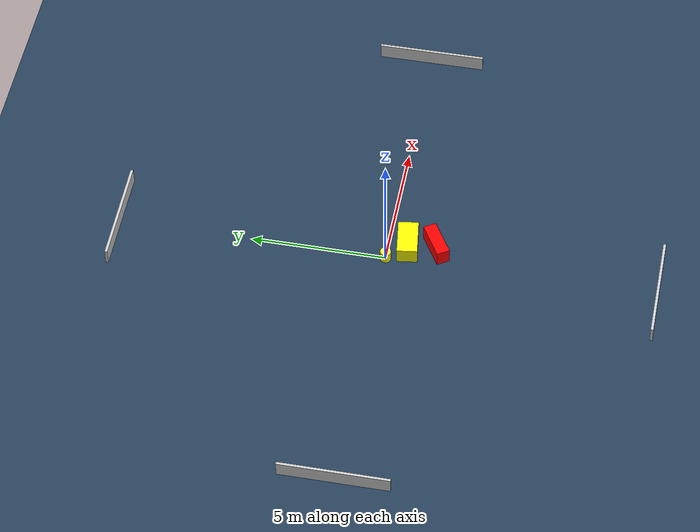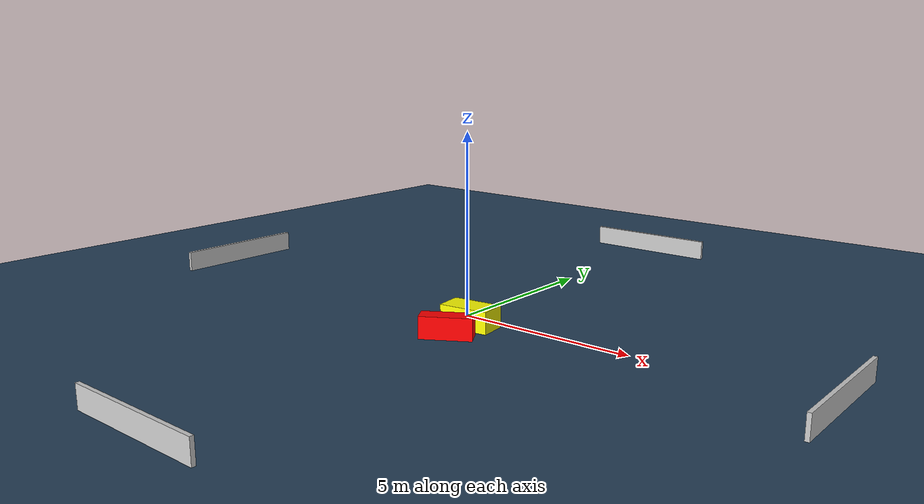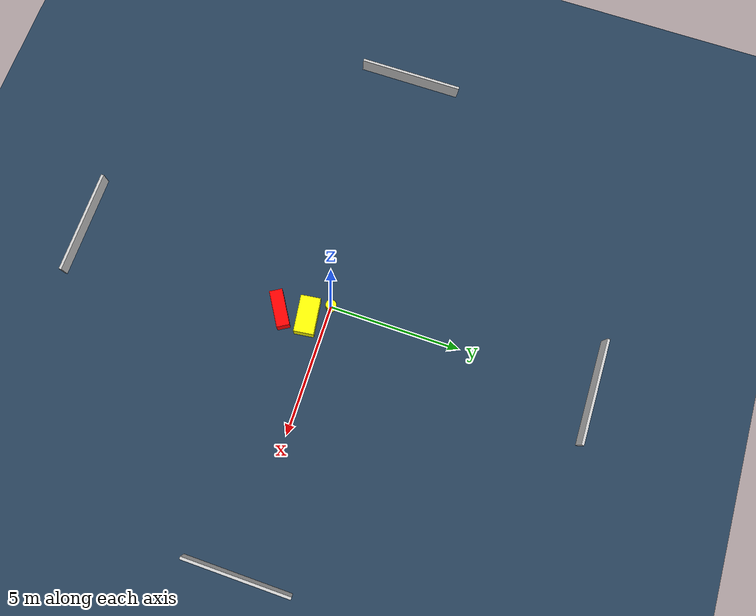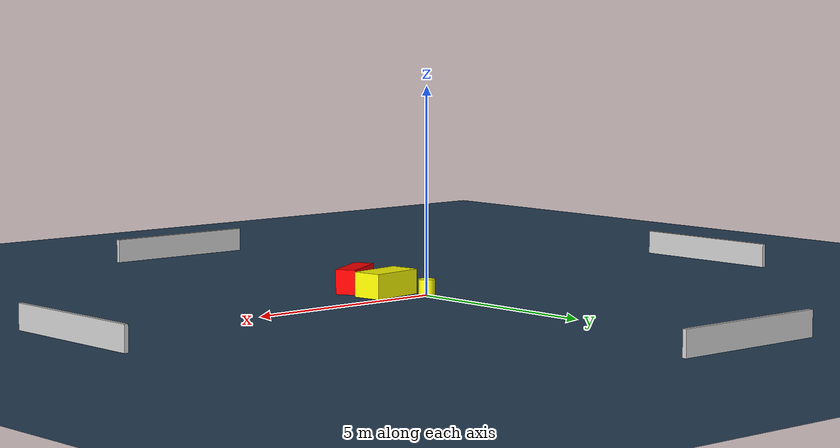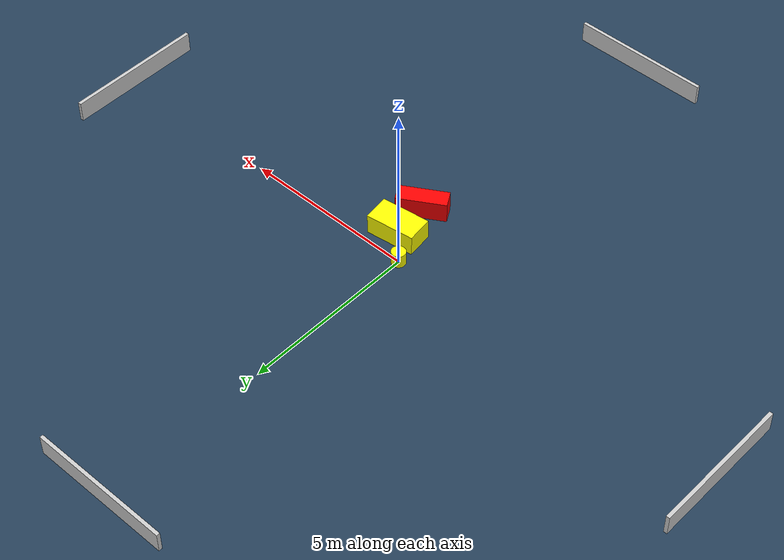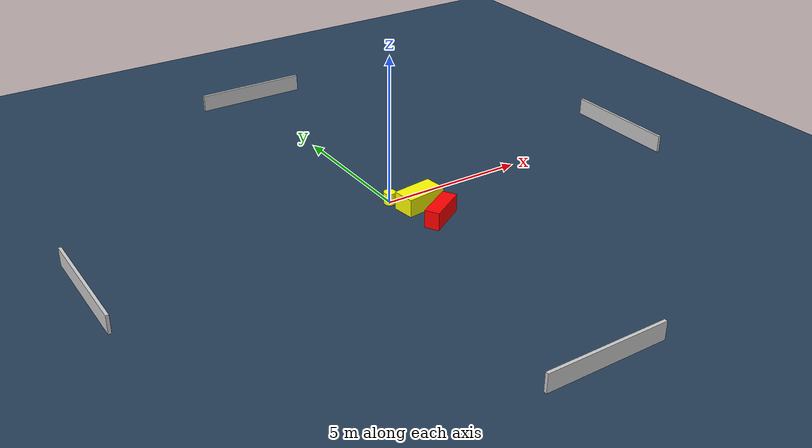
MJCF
<?xml version="1.0" ?>
<mujoco model="generated_environment">
  <option timestep="0.01" integrator="RK4" cone="elliptic"/>
  <default>
    <geom density="1"/>
  </default>
  <asset>
    <texture builtin="gradient" height="3072" name="skybox" rgb1="0.3 0.5 0.7" rgb2="0 0 0" type="skybox" width="512"/>
    <texture builtin="checker" height="300" name="groundplane" rgb1="0.2 0.3 0.4" rgb2="0.1 0.2 0.3" type="2d" width="300"/>
    <material name="groundplane" reflectance="0.2" texrepeat="5 5" texture="groundplane"/>
  </asset>
  <worldbody>
    <light dir="0 0 -1" directional="true" pos="0 0 1.5"/>
    <geom condim="3" friction="0.5 0.005 0.001" material="groundplane" name="floor" pos="0 0 0" size="0 0 0.05" type="plane"/>
    <body name="walls">
      <geom name="wall_1" condim="4" pos="-10.0 0.0 0.3" rgba="0.800000011920929 0.800000011920929 0.800000011920929 1.0" size="0.05 2.0 0.3" type="box"/>
      <geom name="wall_2" condim="4" pos="10.0 0.0 0.3" rgba="0.800000011920929 0.800000011920929 0.800000011920929 1.0" size="0.05 2.0 0.3" type="box"/>
      <geom name="wall_3" condim="4" pos="0.0 -10.0 0.3" rgba="0.800000011920929 0.800000011920929 0.800000011920929 1.0" size="2.0 0.05 0.3" type="box"/>
      <geom name="wall_4" condim="4" pos="0.0 10.0 0.3" rgba="0.800000011920929 0.800000011920929 0.800000011920929 1.0" size="2.0 0.05 0.3" type="box"/>
    </body>
    <body name="robot">
      <joint name="joint_x" type="slide" pos="0 0 0" axis="1 0 0"/>
      <joint name="joint_y" type="slide" pos="0 0 0" axis="0 1 0"/>
      <geom name="robot" type="cylinder" pos="0.0 0.0 0.2" size="0.2 0.2 0.0" mass="5.0" friction="1.0 0.005 0.0001" condim="4" rgba="1.0 1.0 0.0 1.0"/>
    </body>
    <body name="obstacle_1_movable">
      <geom name="obstacle_1_movable" condim="4" pos="0.6749426082210913 -0.6976419860595824 0.3" euler="0 0 277.49952359042175" friction="0.0 0.005 0.001" rgba="1.0 1.0 0.0 1.0" size="0.3767978412677878 0.6948023023820676 0.3" type="box" mass="0.1"/>
      <joint type="free"/>
    </body>
    <body name="obstacle_2_static">
      <geom name="obstacle_2_static" condim="4" pos="0.7650200285087903 -1.7497165639521859 0.3" euler="0 0 31.04197914416051" friction="0.0 0.005 0.001" rgba="1.0 0.0 0.0 1.0" size="0.6912036470397358 0.24492796895417934 0.3" type="box"/>
    </body>
  </worldbody>
  <actuator>
    <motor name="actuator_x" joint="joint_x" gear="1" ctrlrange="-1 1"/>
    <motor name="actuator_y" joint="joint_y" gear="1" ctrlrange="-1 1"/>
  </actuator>
</mujoco>
